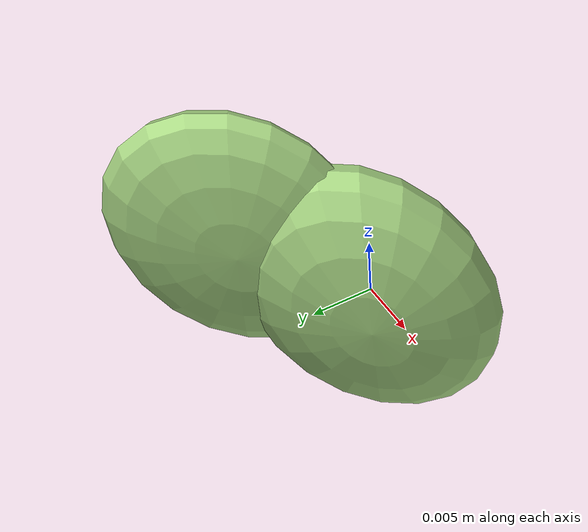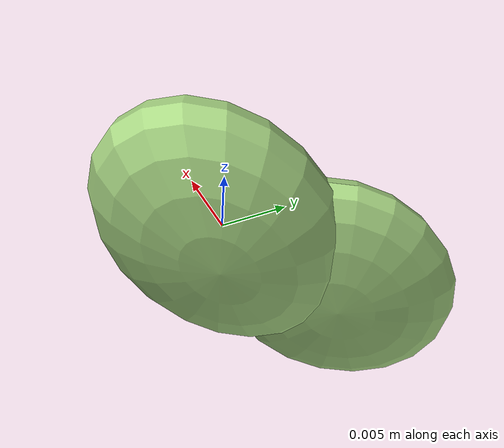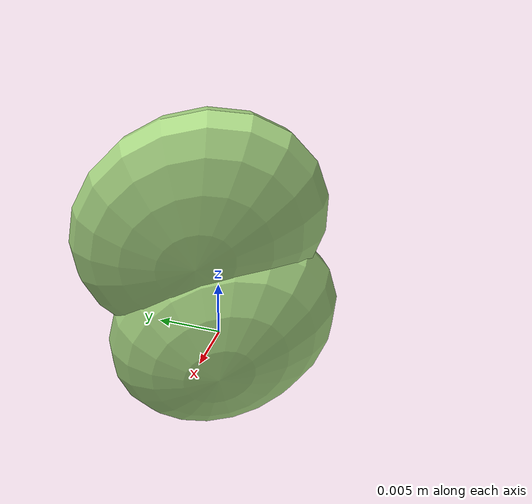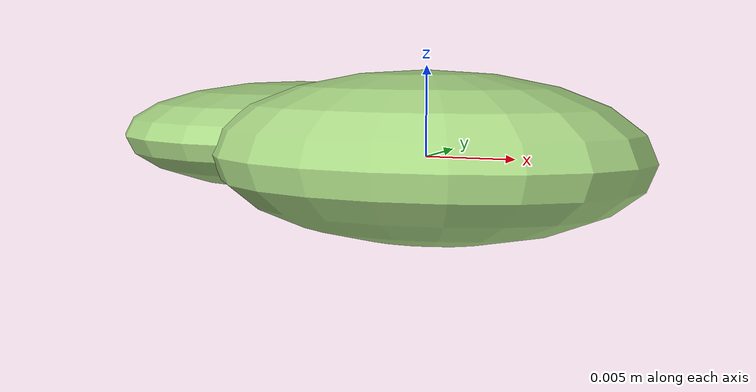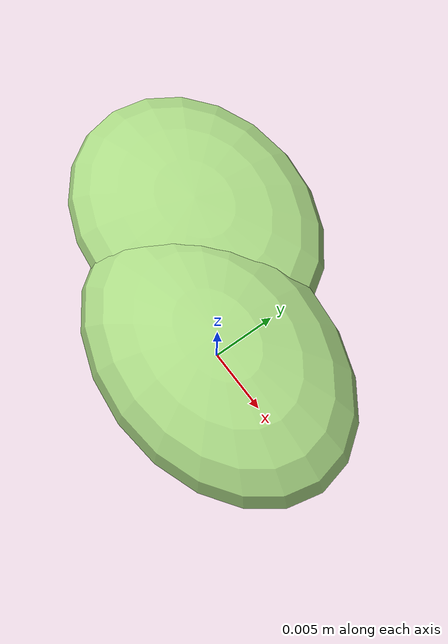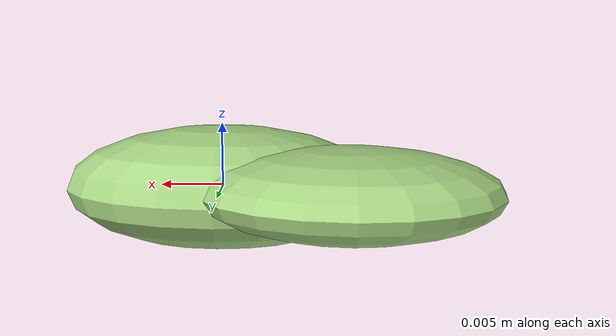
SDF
<?xml version="1.0" ?>
<!-- |    This document was autogenerated by xmacro from data/veggie_template/veggie_base.sdf.xacro  | -->
<!-- |    EDITING THIS FILE BY HAND IS NOT RECOMMENDED                                               | -->
<sdf version="1.8">
	<!-- Parameters -->
	<!-- Base -->
	<!-- Joint 0 -->
	<!-- Link 1 -->
	<!-- Joint 1 -->
	<!-- Link 2 -->
	<!-- Primitives -->
	<!-- All dimensions are half -->
	<!-- Object -->
	<model name="veggie">
		<!-- link0 -->
		<link name="link0">
			<inertial>
				<mass>0.0022105517892006855</mass>
				<inertia>
					<ixx>4.4385024764241774e-08</ixx>
					<ixy>0</ixy>
					<ixz>0</ixz>
					<iyy>7.9755300256305e-08</iyy>
					<iyz>0</iyz>
					<izz>1.0402017067018042e-07</izz>
				</inertia>
			</inertial>
			<visual name="link0_visual">
				<pose>0 0 0 0 0 0</pose>
				<geometry>
					<ellipsoid>
						<radii>0.012555562128024157 0.008811292057234747 0.004770185976453602</radii>
					</ellipsoid>
				</geometry>
				<material>
					<ambient>0.659 0.839 0.514 1</ambient>
					<diffuse>0.659 0.839 0.514 1</diffuse>
					<specular>0 0 0 0</specular>
					<emissive>0 0 0 1</emissive>
				</material>
			</visual>
			<collision name="link0_collision">
				<pose>0 0 0 0 0 0 </pose>
				<geometry>
					<ellipsoid>
						<radii>0.012555562128024157 0.008811292057234747 0.004770185976453602</radii>
					</ellipsoid>
				</geometry>
			</collision>
		</link>
		<!-- link1 -->
		<joint name="joint0" type="fixed">
			<pose relative_to="link0">-0.00986601316699862 0.005163224437948799 0.0005436998780195206 0.0 0.0 0.0</pose>
			<parent>link0</parent>
			<child>link1</child>
		</joint>
		<link name="link1">
			<pose relative_to="joint0">0 0 0 0 0 0</pose>
			<inertial>
				<mass>0.001422304671050165</mass>
				<inertia>
					<ixx>2.6105583385640573e-08</ixx>
					<ixy>0</ixy>
					<ixz>0</ixz>
					<iyy>4.0237818678239895e-08</iyy>
					<iyz>0</iyz>
					<izz>6.012762416522317e-08</izz>
				</inertia>
			</inertial>
			<visual name="link1_visual">
				<pose>0 0 0 0 0 0</pose>
				<geometry>
					<ellipsoid>
						<radii>0.011424856335815584 0.008991472775810335 0.0033053802676828413</radii>
					</ellipsoid>
				</geometry>
				<material>
					<ambient>0.659 0.839 0.514 1</ambient>
					<diffuse>0.659 0.839 0.514 1</diffuse>
					<specular>0 0 0 0</specular>
					<emissive>0 0 0 1</emissive>
				</material>
			</visual>
			<collision name="link1_collision">
				<pose>0 0 0 0 0 0 </pose>
				<geometry>
					<ellipsoid>
						<radii>0.011424856335815584 0.008991472775810335 0.0033053802676828413</radii>
					</ellipsoid>
				</geometry>
			</collision>
		</link>
		<!-- link2 -->
	</model>
</sdf>
